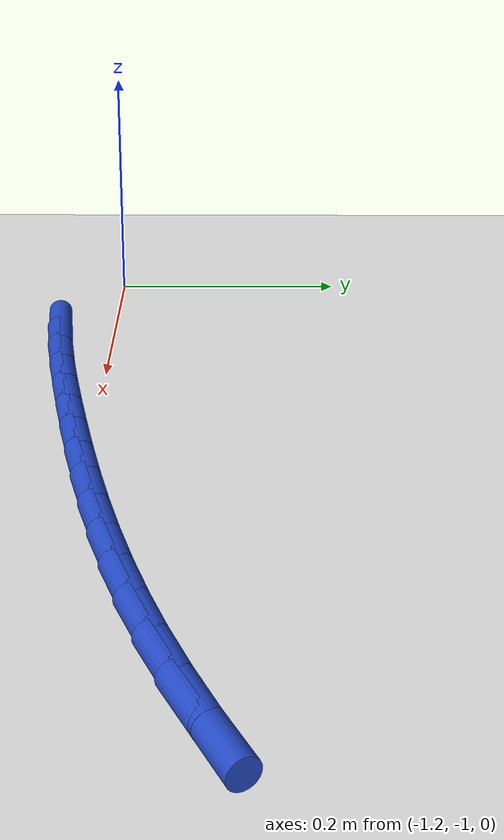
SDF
<sdf version="1.6">
 <world name="default">
  <model name="ground_plane">
   <static>1</static>
   <link name="link">
    <collision name="collision">
     <geometry><plane><normal>0 0 1</normal><size>100 100</size></plane></geometry>
     <surface><friction><ode><mu>100</mu><mu2>50</mu2></ode></friction></surface>
    </collision>
    <visual name="visual">
     <cast_shadows>0</cast_shadows>
     <geometry><plane><normal>0 0 1</normal><size>100 100</size></plane></geometry>
     <material>
      <script><uri>file://media/materials/scripts/gazebo.material</uri><name>Gazebo/WhiteGlow</name></script>
     </material>
    </visual>
   </link>
  </model>
  <model name="line">
   <link name="link_135">
    <pose>-1.0735507024351651 -1.0454590672765687 0.01 0 1.57 0.1246847989125432</pose>
    <collision name="collision">
     <geometry><cylinder><radius>0.01</radius><length>0.08</length></cylinder></geometry>
    </collision>
    <visual name="visual">
     <material>
      <script><name>Gazebo/Blue</name><uri>file://media/materials/scripts/gazebo.material</uri></script>
     </material>
     <geometry><cylinder><radius>0.01</radius><length>0.08</length></cylinder></geometry>
    </visual>
   </link>
   <link name="link_136">
    <pose>-1.0363955990209721 -1.0408022334535105 0.01 0 1.57 0.15853907806995282</pose>
    <collision name="collision">
     <geometry><cylinder><radius>0.01</radius><length>0.08</length></cylinder></geometry>
    </collision>
    <visual name="visual">
     <material>
      <script><name>Gazebo/Blue</name><uri>file://media/materials/scripts/gazebo.material</uri></script>
     </material>
     <geometry><cylinder><radius>0.01</radius><length>0.08</length></cylinder></geometry>
    </visual>
   </link>
   <link name="link_137">
    <pose>-0.9992041012155807 -1.0348560254027683 0.01 0 1.57 0.18367102133131857</pose>
    <collision name="collision">
     <geometry><cylinder><radius>0.01</radius><length>0.08</length></cylinder></geometry>
    </collision>
    <visual name="visual">
     <material>
      <script><name>Gazebo/Blue</name><uri>file://media/materials/scripts/gazebo.material</uri></script>
     </material>
     <geometry><cylinder><radius>0.01</radius><length>0.08</length></cylinder></geometry>
    </visual>
   </link>
   <link name="link_138">
    <pose>-0.9621204678340364 -1.027967196825742 0.01 0 1.57 0.200484466373237</pose>
    <collision name="collision">
     <geometry><cylinder><radius>0.01</radius><length>0.08</length></cylinder></geometry>
    </collision>
    <visual name="visual">
     <material>
      <script><name>Gazebo/Blue</name><uri>file://media/materials/scripts/gazebo.material</uri></script>
     </material>
     <geometry><cylinder><radius>0.01</radius><length>0.08</length></cylinder></geometry>
    </visual>
   </link>
   <link name="link_139">
    <pose>-0.9252889576913815 -1.0204825014238317 0.01 0 1.57 0.21008176049213945</pose>
    <collision name="collision">
     <geometry><cylinder><radius>0.01</radius><length>0.08</length></cylinder></geometry>
    </collision>
    <visual name="visual">
     <material>
      <script><name>Gazebo/Blue</name><uri>file://media/materials/scripts/gazebo.material</uri></script>
     </material>
     <geometry><cylinder><radius>0.01</radius><length>0.08</length></cylinder></geometry>
    </visual>
   </link>
   <link name="link_140">
    <pose>-0.8888419288675102 -1.0127109772513212 0.01 0 1.57 0.22006061041420058</pose>
    <collision name="collision">
     <geometry><cylinder><radius>0.01</radius><length>0.08</length></cylinder></geometry>
    </collision>
    <visual name="visual">
     <material>
      <script><name>Gazebo/Blue</name><uri>file://media/materials/scripts/gazebo.material</uri></script>
     </material>
     <geometry><cylinder><radius>0.01</radius><length>0.08</length></cylinder></geometry>
    </visual>
   </link>
   <link name="link_141">
    <pose>-0.852814078725653 -1.0046521573545633 0.01 0 1.57 0.23419299787910552</pose>
    <collision name="collision">
     <geometry><cylinder><radius>0.01</radius><length>0.08</length></cylinder></geometry>
    </collision>
    <visual name="visual">
     <material>
      <script><name>Gazebo/Blue</name><uri>file://media/materials/scripts/gazebo.material</uri></script>
     </material>
     <geometry><cylinder><radius>0.01</radius><length>0.08</length></cylinder></geometry>
    </visual>
   </link>
   <link name="link_142">
    <pose>-0.8171922232305634 -0.9961538297065454 0.01 0 1.57 0.252544687658939</pose>
    <collision name="collision">
     <geometry><cylinder><radius>0.01</radius><length>0.08</length></cylinder></geometry>
    </collision>
    <visual name="visual">
     <material>
      <script><name>Gazebo/Blue</name><uri>file://media/materials/scripts/gazebo.material</uri></script>
     </material>
     <geometry><cylinder><radius>0.01</radius><length>0.08</length></cylinder></geometry>
    </visual>
   </link>
   <link name="link_143">
    <pose>-0.7819628490178495 -0.9870627385748209 0.01 0 1.57 0.2751094049931268</pose>
    <collision name="collision">
     <geometry><cylinder><radius>0.01</radius><length>0.08</length></cylinder></geometry>
    </collision>
    <visual name="visual">
     <material>
      <script><name>Gazebo/Blue</name><uri>file://media/materials/scripts/gazebo.material</uri></script>
     </material>
     <geometry><cylinder><radius>0.01</radius><length>0.08</length></cylinder></geometry>
    </visual>
   </link>
   <link name="link_144">
    <pose>-0.7471124427231157 -0.9772256282269408 0.01 0 1.57 0.3018235039201422</pose>
    <collision name="collision">
     <geometry><cylinder><radius>0.01</radius><length>0.08</length></cylinder></geometry>
    </collision>
    <visual name="visual">
     <material>
      <script><name>Gazebo/Blue</name><uri>file://media/materials/scripts/gazebo.material</uri></script>
     </material>
     <geometry><cylinder><radius>0.01</radius><length>0.08</length></cylinder></geometry>
    </visual>
   </link>
   <link name="link_145">
    <pose>-0.7126274909819681 -0.9664892429304572 0.01 0 1.57 0.3325545788351261</pose>
    <collision name="collision">
     <geometry><cylinder><radius>0.01</radius><length>0.08</length></cylinder></geometry>
    </collision>
    <visual name="visual">
     <material>
      <script><name>Gazebo/Blue</name><uri>file://media/materials/scripts/gazebo.material</uri></script>
     </material>
     <geometry><cylinder><radius>0.01</radius><length>0.08</length></cylinder></geometry>
    </visual>
   </link>
   <link name="link_146">
    <pose>-0.6784944804300121 -0.954700326952922 0.01 0 1.57 0.3670273647740162</pose>
    <collision name="collision">
     <geometry><cylinder><radius>0.01</radius><length>0.08</length></cylinder></geometry>
    </collision>
    <visual name="visual">
     <material>
      <script><name>Gazebo/Blue</name><uri>file://media/materials/scripts/gazebo.material</uri></script>
     </material>
     <geometry><cylinder><radius>0.01</radius><length>0.08</length></cylinder></geometry>
    </visual>
   </link>
   <link name="link_147">
    <pose>-0.6447008976556872 -0.9417084767165631 0.01 0 1.57 0.4031604836566888</pose>
    <collision name="collision">
     <geometry><cylinder><radius>0.01</radius><length>0.08</length></cylinder></geometry>
    </collision>
    <visual name="visual">
     <material>
      <script><name>Gazebo/Blue</name><uri>file://media/materials/scripts/gazebo.material</uri></script>
     </material>
     <geometry><cylinder><radius>0.01</radius><length>0.08</length></cylinder></geometry>
    </visual>
   </link>
   <link name="link_148">
    <pose>-0.6112634416931988 -0.9274466109874288 0.01 0 1.57 0.4388553460062663</pose>
    <collision name="collision">
     <geometry><cylinder><radius>0.01</radius><length>0.08</length></cylinder></geometry>
    </collision>
    <visual name="visual">
     <material>
      <script><name>Gazebo/Blue</name><uri>file://media/materials/scripts/gazebo.material</uri></script>
     </material>
     <geometry><cylinder><radius>0.01</radius><length>0.08</length></cylinder></geometry>
    </visual>
   </link>
   <link name="link_149">
    <pose>-0.5782319599438893 -0.9119421972614316 0.01 0 1.57 0.4740904233349353</pose>
    <collision name="collision">
     <geometry><cylinder><radius>0.01</radius><length>0.08</length></cylinder></geometry>
    </collision>
    <visual name="visual">
     <material>
      <script><name>Gazebo/Blue</name><uri>file://media/materials/scripts/gazebo.material</uri></script>
     </material>
     <geometry><cylinder><radius>0.01</radius><length>0.08</length></cylinder></geometry>
    </visual>
   </link>
  </model>
 </world>
</sdf>
